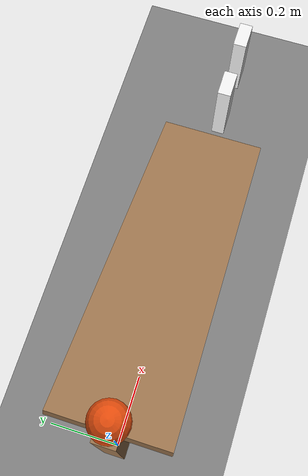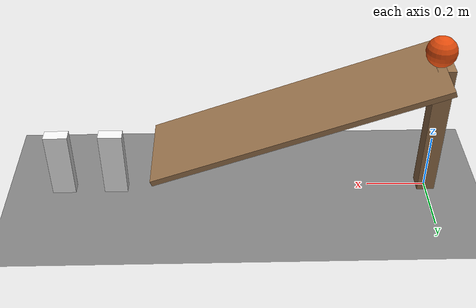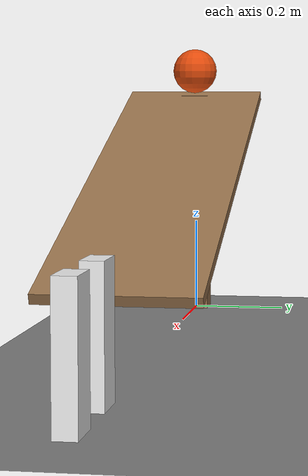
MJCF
<mujoco model="gravity_driven_domino_pair">
  <compiler angle="radian"/>
  <option timestep="0.002"/>
  <worldbody>
    <geom name="floor" type="plane" size="6 6 0.1" friction="0.7 0 0"/>
    <body name="ramp1">
      <geom name="ramp1_deck" type="box" pos="0.469846 0 0.32101" size="0.5 0.15 0.01" euler="0 0.349066 0" friction="0.7 0 0" solref="0.01 1" rgba="0.6 0.45 0.3 1"/>
      <geom name="ramp1_leg" type="box" pos="0 0 0.24601" size="0.03 0.03 0.24601" friction="0.7 0 0" solref="0.01 1" rgba="0.6 0.45 0.3 1"/>
    </body>
    <body name="ball1" pos="0.0205212 0 0.548402">
      <freejoint/>
      <geom name="ball1" type="sphere" pos="0 0 0" size="0.05" mass="0.2" condim="6" friction="0.7 0 0" solref="0.01 1" rgba="0.9 0.3 0.05 1"/>
    </body>
    <body name="domino1" pos="1.07969 0 0.12">
      <freejoint/>
      <geom name="domino1" type="box" pos="0 0 0" size="0.04 0.02 0.12" mass="0.25" friction="0.7 0 0" solref="0.01 1" rgba="0.95 0.95 0.95 1"/>
    </body>
    <body name="domino2" pos="1.25969 0 0.12">
      <freejoint/>
      <geom name="domino2" type="box" pos="0 0 0" size="0.04 0.02 0.12" mass="0.25" friction="0.7 0 0" solref="0.01 1" rgba="0.95 0.95 0.95 1"/>
    </body>
  </worldbody>
  <keyframe>
    <key name="start" qpos="0.0205212 0 0.548402 1 0 0 0 1.07969 0 0.12 1 0 0 0 1.25969 0 0.12 1 0 0 0" qvel="0 0 0 0 0 0 0 0 0 0 0 0 0 0 0 0 0 0"/>
  </keyframe>
</mujoco>
